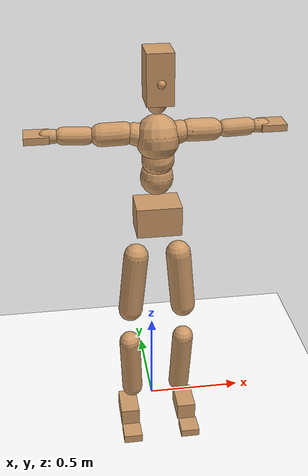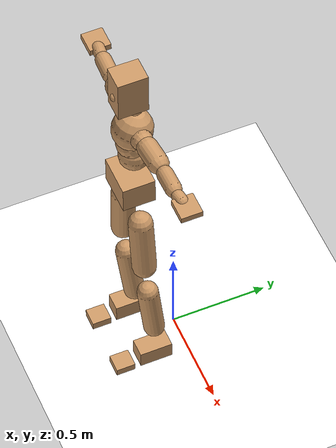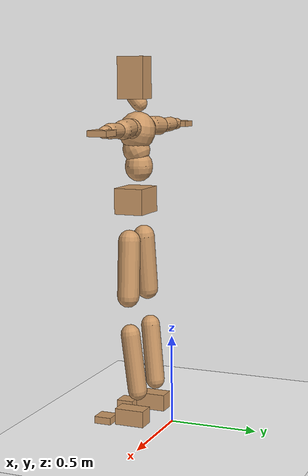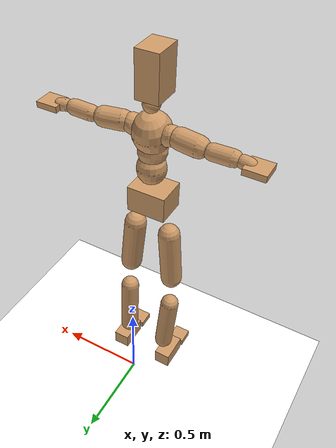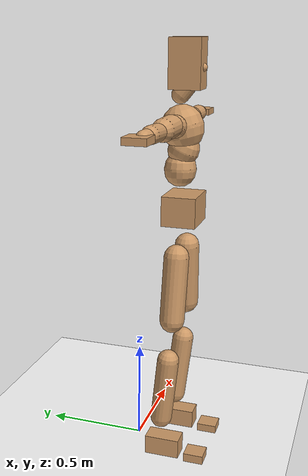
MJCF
<mujoco model="humanoid">
  <option integrator="implicitfast" />

  <visual>
    <global offwidth="1280" offheight="960" />
    <headlight active="1" ambient="0.34 0.34 0.34" diffuse="0.5 0.5 0.5" />
  </visual>

  <default>
    <joint damping="2" stiffness="2" armature="0.01" limited="true" solimplimit="0 .99 .01" />
    <geom condim="1" friction="0.7 0.005 0.0001" solimp=".99 .99 .003" solref="0.015 1" margin="0.001" rgba="0.8 0.6 .4 1" />
    <default class="smplcontact">
      <geom condim="3" friction="1. 0.005 0.0001" solref="0.015 1" solimp="0.98 0.98 0.001" priority="1" />
    </default>
    <default class="stiff_medium">
      <joint stiffness="10" />
    </default>
    <default class="stiff_medium_higher">
      <joint stiffness="50" />
    </default>
    <default class="stiff_high">
      <joint stiffness="100" />
    </default>
  </default>

  <asset>
    <texture type="skybox" builtin="gradient" rgb1="0.99 0.99 0.99" rgb2="0.608 0.828 0.892" width="100" />
    <texture builtin="flat" height="1278" mark="cross" markrgb="1 1 1" name="texgeom" random="0.01" rgb1="0.8 0.6 0.4" rgb2="0.8 0.6 0.4" type="cube" width="127" />
    <texture name="texplane" type="2d" builtin="checker" markrgb="1 1 1" rgb1="0.756 0.772 0.76" rgb2="0.6 0.6 0.6" width="100" height="100" />
    <material name="MatPlane" reflectance="0.5" texture="texplane" texrepeat="1 1" texuniform="true" />
    <material name="geom" texture="texgeom" texuniform="true" />
  </asset>

  <worldbody>
    <light name="tracking_light" pos="0 0 7" dir="0 0 -1" directional="true" cutoff="100" exponent="1" diffuse="1 1 1" specular="0.1 0.1 0.1" mode="trackcom" />
    <camera name="back" pos="0 3 2.4" xyaxes="-1 0 0 0 -1 2" mode="trackcom" />
    <camera name="side" pos="-3 0 2.4" xyaxes="0 -1 0 1 0 2" mode="trackcom" />
    <camera name="front_side" pos="-2.8 -2.8 0.8" xyaxes="0.5 -0.5 0 0.1 0.1 1" mode="trackcom" />
    <geom condim="3" name="floor" pos="0 0 0" rgba="1 1 1 1" size="100 100 .2" type="plane" material="MatPlane" />
    <body name="Pelvis" pos="-0.0018 -0.2233 1.27986" euler="90 0 0">
      <site name="Pelvis" size="0.01" />
      <freejoint name="Pelvis" />
      <geom type="box" pos="-0.0000 -0.0121 -0.0055" size="0.1069 0.0722 0.083" quat="1.0000 0.0000 0.0000 0.0000" density="3165.830099" name="Pelvis" />
      <body name="L_Hip" pos="0.0955625 -0.125675 -0.00935">
        <joint name="L_Hip_x" type="hinge" pos="0 0 0" axis="1 0 0" stiffness="17.19824030612245" range="-160.0 22.92" class="stiff_medium" damping="29.62936129092434" armature="0.022687051049198846"/>
        <joint name="L_Hip_y" type="hinge" pos="0 0 0" axis="0 1 0" stiffness="17.095561632653062" range="-70.0 70.0" class="stiff_medium" damping="16.759236135916314" armature="0.016429527259457143"/>
        <joint name="L_Hip_z" type="hinge" pos="0 0 0" axis="0 0 1" stiffness="17.10435142857143" range="-28.65 90.0" class="stiff_medium" damping="19.702841471961815" armature="0.02269609366308965"/>
        <geom type="capsule" density="2040.816327" fromto="0.0094875 -0.103125 -0.0012375 0.037675 -0.412775 -0.00495" size="0.0615" name="L_Hip" />
        <body name="L_Knee" pos="0.0471625 -0.5159 -0.0061875">
          <joint name="L_Knee_x" type="hinge" pos="0 0 0" axis="1 0 0" range="-5.16 171.89" damping="15.062760794576997" armature="0.021343797365827887" stiffness="3.321907163265306"/>
          <joint name="L_Knee_y" type="hinge" pos="0 0 0" axis="0 1 0" range="-4.58 6.88" damping="12.94596523287159" armature="0.01544157836446214" stiffness="3.3917763265306125"/>
          <joint name="L_Knee_z" type="hinge" pos="0 0 0" axis="0 0 1" range="-6.88 4.58" damping="15.006918060065534" armature="0.02138423024615951" stiffness="3.2910874489795923"/>
          <geom type="capsule" density="1234.567901" fromto="-0.0037125 -0.10945 -0.0119625 -0.0149875 -0.4378 -0.048125" size="0.0541" name="L_Knee" />
          <body name="L_Ankle" pos="-0.0187 -0.54725 -0.0600875">
            <joint name="L_Ankle_x" type="hinge" pos="0 0 0" axis="1 0 0" range="-45.84 45.84" class="stiff_medium" damping="8.859849432432462" armature="0.015857944517404216" stiffness="13.750018673469388"/>
            <joint name="L_Ankle_y" type="hinge" pos="0 0 0" axis="0 1 0" range="-74.48 22.92" class="stiff_medium" damping="4.399379468505369" armature="0.01564001862343353" stiffness="13.750011836734695"/>
            <joint name="L_Ankle_z" type="hinge" pos="0 0 0" axis="0 0 1" range="-4.58 4.58" class="stiff_medium" damping="8.387836414113867" armature="0.014213292870693854" stiffness="13.75"/>
            <geom type="box" pos="0.0320375 -0.0328625 0.033275" size="0.0483 0.0464 0.085" quat="1.0000 0.0000 0.0000 0.0000" density="449.071558" name="L_Ankle" class="smplcontact" />
            <body name="L_Toe" pos="0.0363 -0.076725 0.164038">
              <joint name="L_Toe_x" type="hinge" pos="0 0 0" axis="1 0 0" range="-91.67 22.92" armature="0.013386048586152794" damping="2.7133607799892805" stiffness="2.75"/>
              <joint name="L_Toe_y" type="hinge" pos="0 0 0" axis="0 1 0" range="-4.58 4.58" armature="0.012385744586589321" damping="2.610011402776648" stiffness="2.75"/>
              <joint name="L_Toe_z" type="hinge" pos="0 0 0" axis="0 0 1" range="-4.58 4.58" armature="0.010363183740584822" damping="2.387415141386527" stiffness="2.75"/>
              <geom type="box" pos="-0.004125 0.0075625 0.0341" size="0.0478 0.02 0.0496" quat="1.0000 0.0000 0.0000 0.0000" density="423.206892" name="L_Toe" class="smplcontact" />
            </body>
          </body>
        </body>
      </body>
      <body name="R_Hip" pos="-0.0930875 -0.124437 -0.0059125">
        <joint name="R_Hip_x" type="hinge" pos="0 0 0" axis="1 0 0" stiffness="17.19824030612245" range="-160.0 22.92" class="stiff_medium" damping="29.62936129092434" armature="0.022687051049198846"/>
        <joint name="R_Hip_y" type="hinge" pos="0 0 0" axis="0 1 0" stiffness="17.095561632653062" range="-70.0 70.0" class="stiff_medium" damping="16.759236135916314" armature="0.016429527259457143"/>
        <joint name="R_Hip_z" type="hinge" pos="0 0 0" axis="0 0 1" stiffness="17.10435142857143" range="-90.0 28.65" class="stiff_medium" damping="19.702841471961815" armature="0.02269609366308965"/>
        <geom type="capsule" density="2040.816327" fromto="-0.0105875 -0.105188 -0.002475 -0.042075 -0.420887 -0.0097625" size="0.0606" name="R_Hip" />
        <body name="R_Knee" pos="-0.0526625 -0.526075 -0.0122375">
          <joint name="R_Knee_x" type="hinge" pos="0 0 0" axis="1 0 0" range="-5.16 171.89" damping="15.062760794576997" armature="0.021343797365827887" stiffness="3.321907163265306"/>
          <joint name="R_Knee_y" type="hinge" pos="0 0 0" axis="0 1 0" range="-6.88 4.58" damping="12.94596523287159" armature="0.01544157836446214" stiffness="3.3917763265306125"/>
          <joint name="R_Knee_z" type="hinge" pos="0 0 0" axis="0 0 1" range="-4.58 6.88" damping="15.006918060065534" armature="0.02138423024615951" stiffness="3.2910874489795923"/>
          <geom type="capsule" density="1234.567901" fromto="0.0044 -0.109587 -0.0116875 0.017325 -0.438213 -0.046475" size="0.0541" name="R_Knee" />
          <body name="R_Ankle" pos="0.021725 -0.5478 -0.0581625">
            <joint name="R_Ankle_x" type="hinge" pos="0 0 0" axis="1 0 0" range="-45.84 45.84" class="stiff_medium" damping="8.859849432432462" armature="0.015857944517404216" stiffness="13.750018673469388"/>
            <joint name="R_Ankle_y" type="hinge" pos="0 0 0" axis="0 1 0" range="-22.92 74.48" class="stiff_medium" damping="4.399379468505369" armature="0.01564001862343353" stiffness="13.750011836734695"/>
            <joint name="R_Ankle_z" type="hinge" pos="0 0 0" axis="0 0 1" range="-4.58 4.58" class="stiff_medium" damping="8.387836414113867" armature="0.014213292870693854" stiffness="13.75"/>
            <geom type="box" pos="-0.02915 -0.023925 0.0352" size="0.0483 0.0478 0.0865" quat="1.0000 0.0000 0.0000 0.0000" density="434.700981" name="R_Ankle" class="smplcontact" />
            <body name="R_Toe" pos="-0.034925 -0.0661375 0.169538">
              <joint name="R_Toe_x" type="hinge" pos="0 0 0" axis="1 0 0" range="-91.67 22.92" armature="0.013386048586152794" damping="2.7133607799892805" stiffness="2.75"/>
              <joint name="R_Toe_y" type="hinge" pos="0 0 0" axis="0 1 0" range="-4.58 4.58" armature="0.012385744586589321" damping="2.610011402776648" stiffness="2.75"/>
              <joint name="R_Toe_z" type="hinge" pos="0 0 0" axis="0 0 1" range="-4.58 4.58" armature="0.010363183740584822" damping="2.387415141386527" stiffness="2.75"/>
              <geom type="box" pos="0.005775 0.0061875 0.0312125" size="0.0479 0.0216 0.0493" quat="1.0000 0.0000 0.0000 0.0000" density="407.384095" name="R_Toe" class="smplcontact" />
            </body>
          </body>
        </body>
      </body>
      <body name="Torso" pos="-0.0025 0.109 -0.0267">
        <joint name="Torso_x" type="hinge" pos="0 0 0" axis="1 0 0" range="-25.78 57.3" class="stiff_medium" damping="13.296564125699913" armature="0.008717287887859698" stiffness="9.01394612244898"/>
        <joint name="Torso_y" type="hinge" pos="0 0 0" axis="0 1 0" range="-57.3 57.3" class="stiff_high" damping="11.857975578739211" armature="0.0038447211811141586" stiffness="91.43158775510203"/>
        <joint name="Torso_z" type="hinge" pos="0 0 0" axis="0 0 1" range="-34.38 34.38" class="stiff_high" damping="16.19322021929785" armature="0.0070455832998023386" stiffness="93.0442413043478"/>
        <geom type="capsule" density="2040.816327" fromto="0.0025 0.0608 0.0005 0.003 0.0743 0.0006" size="0.0769" name="Torso" />
        <body name="Spine" pos="0.0055 0.1352 0.0011">
          <joint name="Spine_x" type="hinge" pos="0 0 0" axis="1 0 0" stiffness="8.855082083333333" range="-25.78 57.3" class="stiff_medium" damping="13.076797677453987" armature="0.008582774445870408"/>
          <joint name="Spine_y" type="hinge" pos="0 0 0" axis="0 1 0" stiffness="8.966550425531915" range="-57.3 57.3" class="stiff_high" damping="4.670538649446807" armature="0.003801268715520682"/>
          <joint name="Spine_z" type="hinge" pos="0 0 0" axis="0 0 1" stiffness="17.399179999999998" range="-34.38 34.38" class="stiff_high" damping="8.61238928809505" armature="0.005920876830729186"/>
          <geom type="capsule" density="2040.816327" fromto="0.0007 0.0238 0.0114 0.0008 0.0291 0.014" size="0.0755" name="Spine" />
          <body name="Chest" pos="0.0015 0.0529 0.0254">
            <joint name="Chest_x" type="hinge" pos="0 0 0" axis="1 0 0" stiffness="8.445605217391304" range="-25.78 57.3" class="stiff_medium" damping="12.725283601188009" armature="0.008521609816255424"/>
            <joint name="Chest_y" type="hinge" pos="0 0 0" axis="0 1 0" stiffness="7.416513142857141" range="-57.3 57.3" class="stiff_high" damping="4.235867490218072" armature="0.003780114777548564"/>
            <joint name="Chest_z" type="hinge" pos="0 0 0" axis="0 0 1" stiffness="17.461715111111108" range="-34.38 34.38" class="stiff_high" damping="8.265316118618486" armature="0.005433748608980235"/>
            <geom type="capsule" density="2040.816327" fromto="-0.0009 0.0682 -0.0173 -0.001 0.0833 -0.0212" size="0.1002" name="Chest" />
            <body name="Neck" pos="-0.0028 0.2139 -0.0429">
              <joint name="Neck_x" type="hinge" pos="0 0 0" axis="1 0 0" range="-28.65 57.3" class="stiff_medium_higher" damping="9.999999999999993" armature="0.009999999999999988" stiffness="50.0"/>
              <joint name="Neck_y" type="hinge" pos="0 0 0" axis="0 1 0" range="-40.11 40.11" class="stiff_medium_higher" damping="10.0" armature="0.01" stiffness="50.0"/>
              <joint name="Neck_z" type="hinge" pos="0 0 0" axis="0 0 1" range="-40.11 40.11" class="stiff_medium_higher" damping="9.999999999999986" armature="0.00999999999999997" stiffness="50.0"/>
              <geom type="capsule" density="1000" fromto="0.001 0.013 0.0103 0.0041 0.052 0.0411" size="0.0436" name="Neck" />
              <body name="Head" pos="0.0052 0.065 0.0513">
                <joint name="Head_x" type="hinge" pos="0 0 0" axis="1 0 0" range="-28.65 57.3" class="stiff_medium_higher" damping="2.0" armature="0.01" stiffness="50.0"/>
                <joint name="Head_y" type="hinge" pos="0 0 0" axis="0 1 0" range="-40.11 40.11" class="stiff_medium_higher" damping="2.0" armature="0.01" stiffness="50.0"/>
                <joint name="Head_z" type="hinge" pos="0 0 0" axis="0 0 1" range="-40.11 40.11" class="stiff_medium_higher" damping="1.9999999999999931" armature="0.009999999999999933" stiffness="50.0"/>
                <geom type="box" pos="-0.0042 0.0876 -0.0116" size="0.0606 0.1154 0.076" quat="1.0000 0.0000 0.0000 0.0000" density="1018.069894" name="Head" />
                <geom type="capsule" name="nose" size="0.02 0.01" pos="0 0.07 0.05" quat="1 0 0 0" mass="0" contype="0" conaffinity="0" />
              </body>
            </body>
            <body name="L_Thorax" pos="0.052205 0.0806262 -0.0225912">
              <joint name="L_Thorax_x" type="hinge" pos="0 0 0" axis="1 0 0" range="-10.89 4.58" class="stiff_medium_higher" damping="10.752161019344758" armature="0.005492534491244077" stiffness="26.310478061224497"/>
              <joint name="L_Thorax_y" type="hinge" pos="0 0 0" axis="0 1 0" range="-28.65 17.19" class="stiff_medium_higher" damping="8.656507675839677" armature="0.003599090918613799" stiffness="26.025712755102038"/>
              <joint name="L_Thorax_z" type="hinge" pos="0 0 0" axis="0 0 1" range="-31.51 40.11" class="stiff_medium_higher" damping="8.654936190408645" armature="0.0035973494554525556" stiffness="26.02885867346939"/>
              <geom type="capsule" density="1000" fromto="0.0120575 0.00404125 -0.0011925 0.04823 0.016165 -0.00470375" size="0.0521" name="L_Thorax" />
              <body name="L_Shoulder" pos="0.0602875 0.0202062 -0.00589625">
                <joint name="L_Shoulder_x" type="hinge" pos="0 0 0" axis="1 0 0" range="-97.4 97.4" class="stiff_medium" damping="3.435570611371519" armature="0.006181474178059021" stiffness="5.3039961224489796"/>
                <joint name="L_Shoulder_y" type="hinge" pos="0 0 0" axis="0 1 0" range="-108.86 80.21" class="stiff_medium" damping="2.619467278569037" armature="0.00364693025105719" stiffness="5.226319999999999"/>
                <joint name="L_Shoulder_z" type="hinge" pos="0 0 0" axis="0 0 1" range="-97.4 85.94" class="stiff_medium" damping="2.619734916927622" armature="0.003644479893049843" stiffness="5.230902653061225"/>
                <geom type="capsule" density="1000" fromto="0.0343837 -0.0017225 -0.00364375 0.137601 -0.0067575 -0.014575" size="0.0517" name="L_Shoulder" />
                <body name="L_Elbow" pos="0.171985 -0.00848 -0.0182187">
                  <joint name="L_Elbow_x" type="hinge" pos="0 0 0" axis="1 0 0" range="-17.19 4.58" damping="3.1785577743546862" armature="0.0073936623788687416" stiffness="1.0931772653061227"/>
                  <joint name="L_Elbow_y" type="hinge" pos="0 0 0" axis="0 1 0" range="-180.0 17.19" damping="2.303303060735329" armature="0.0038850422609153757" stiffness="1.0924370204081633"/>
                  <joint name="L_Elbow_z" type="hinge" pos="0 0 0" axis="0 0 1" range="-100.84 4.58" damping="2.300811432859374" armature="0.0038721783452337222" stiffness="1.0936961632653062"/>
                  <geom type="capsule" density="1000" fromto="0.0329925 0.0011925 -0.0001325 0.132102 0.00477 -0.00059625" size="0.0405" name="L_Elbow" />
                  <body name="L_Wrist" pos="0.165095 0.0059625 -0.000795">
                    <joint name="L_Wrist_x" type="hinge" pos="0 0 0" axis="1 0 0" range="-180.0 22.92" armature="0.00800142785574359" damping="1.4109622696560373" stiffness="1.2440370408163264"/>
                    <joint name="L_Wrist_y" type="hinge" pos="0 0 0" axis="0 1 0" range="-17.19 17.19" armature="0.0048794714290034645" damping="1.0965644446974514" stiffness="1.2321555714285712"/>
                    <joint name="L_Wrist_z" type="hinge" pos="0 0 0" axis="0 0 1" range="-22.92 22.92" armature="0.004698864868438955" damping="1.0781698402209015" stiffness="1.2369478979591837"/>
                    <geom type="capsule" density="1000" fromto="0.01113 -0.00106 -0.0019875 0.04452 -0.00430625 -0.00795" size="0.0318" name="L_Wrist" class="smplcontact" />
                    <body name="L_Hand" pos="0.05565 -0.0054325 -0.00987125">
                      <joint name="L_Hand_x" type="hinge" pos="0 0 0" axis="1 0 0" range="-17.19 17.19" armature="0.009755552996203867" damping="1.6078618449167752" stiffness="1.3249990612244895"/>
                      <joint name="L_Hand_y" type="hinge" pos="0 0 0" axis="0 1 0" range="-51.57 51.57" armature="0.007043747166286061" damping="1.3662326477640436" stiffness="1.3249990408163264"/>
                      <joint name="L_Hand_z" type="hinge" pos="0 0 0" axis="0 0 1" range="-91.67 91.67" armature="0.006320878329523043" damping="1.2942300773618036" stiffness="1.3249989999999998"/>
                      <geom type="box" pos="0.0326612 0.0006625 -0.0038425" size="0.0585 0.0158 0.0538" quat="1.0000 0.0000 0.0000 0.0000" density="400.552564" name="L_Hand" class="smplcontact" />
                    </body>
                  </body>
                </body>
              </body>
            </body>
            <body name="R_Thorax" pos="-0.0541925 0.078705 -0.0255725">
              <joint name="R_Thorax_x" type="hinge" pos="0 0 0" axis="1 0 0" range="-10.89 4.58" class="stiff_medium_higher" damping="10.752161019344758" armature="0.005492534491244077" stiffness="26.310478061224497"/>
              <joint name="R_Thorax_y" type="hinge" pos="0 0 0" axis="0 1 0" range="-17.19 28.65" class="stiff_medium_higher" damping="8.656507675839677" armature="0.003599090918613799" stiffness="26.025712755102038"/>
              <joint name="R_Thorax_z" type="hinge" pos="0 0 0" axis="0 0 1" range="-40.11 31.51" class="stiff_medium_higher" damping="8.654936190408645" armature="0.0035973494554525556" stiffness="26.02885867346939"/>
              <geom type="capsule" density="1000" fromto="-0.01272 0.00430625 -0.0011925 -0.05088 0.017225 -0.00483625" size="0.0511" name="R_Thorax" />
              <body name="R_Shoulder" pos="-0.0636 0.0215975 -0.00602875">
                <joint name="R_Shoulder_x" type="hinge" pos="0 0 0" axis="1 0 0" range="-97.4 97.4" class="stiff_medium" damping="3.435570611371519" armature="0.006181474178059021" stiffness="5.3039961224489796"/>
                <joint name="R_Shoulder_y" type="hinge" pos="0 0 0" axis="0 1 0" range="-80.21 108.86" class="stiff_medium" damping="2.619467278569037" armature="0.00364693025105719" stiffness="5.226319999999999"/>
                <joint name="R_Shoulder_z" type="hinge" pos="0 0 0" axis="0 0 1" range="-85.94 97.4" class="stiff_medium" damping="2.619734916927622" armature="0.003644479893049843" stiffness="5.230902653061225"/>
                <geom type="capsule" density="1000" fromto="-0.0335888 -0.00178875 -0.00284875 -0.134488 -0.00708875 -0.0113288" size="0.0531" name="R_Shoulder" />
                <body name="R_Elbow" pos="-0.168076 -0.00881125 -0.0141775">
                  <joint name="R_Elbow_x" type="hinge" pos="0 0 0" axis="1 0 0" range="-17.19 4.58" damping="3.1785577743546862" armature="0.0073936623788687416" stiffness="1.0931772653061227"/>
                  <joint name="R_Elbow_y" type="hinge" pos="0 0 0" axis="0 1 0" range="-17.19 180.0" damping="2.303303060735329" armature="0.0038850422609153757" stiffness="1.0924370204081633"/>
                  <joint name="R_Elbow_z" type="hinge" pos="0 0 0" axis="0 0 1" range="-4.58 100.84" damping="2.300811432859374" armature="0.0038721783452337222" stiffness="1.0936961632653062"/>
                  <geom type="capsule" density="1000" fromto="-0.0338538 0.00106 -0.00072875 -0.135282 0.0041075 -0.002915" size="0.0408" name="R_Elbow" />
                  <body name="R_Wrist" pos="-0.169136 0.0051675 -0.00371">
                    <joint name="R_Wrist_x" type="hinge" pos="0 0 0" axis="1 0 0" range="-180.0 22.92" armature="0.00800142785574359" damping="1.4109622696560373" stiffness="1.2440370408163264"/>
                    <joint name="R_Wrist_y" type="hinge" pos="0 0 0" axis="0 1 0" range="-17.19 17.19" armature="0.0048794714290034645" damping="1.0965644446974514" stiffness="1.2321555714285712"/>
                    <joint name="R_Wrist_z" type="hinge" pos="0 0 0" axis="0 0 1" range="-22.92 22.92" armature="0.004698864868438955" damping="1.0781698402209015" stiffness="1.2369478979591837"/>
                    <geom type="capsule" density="1000" fromto="-0.0111962 -0.000795 -0.00139125 -0.0448512 -0.00324625 -0.00549875" size="0.0326" name="R_Wrist" class="smplcontact" />
                    <body name="R_Hand" pos="-0.0560475 -0.00404125 -0.00682375">
                      <joint name="R_Hand_x" type="hinge" pos="0 0 0" axis="1 0 0" range="-17.19 17.19" armature="0.009755552996203867" damping="1.6078618449167752" stiffness="1.3249990612244895"/>
                      <joint name="R_Hand_y" type="hinge" pos="0 0 0" axis="0 1 0" range="-51.57 51.57" armature="0.007043747166286061" damping="1.3662326477640436" stiffness="1.3249990408163264"/>
                      <joint name="R_Hand_z" type="hinge" pos="0 0 0" axis="0 0 1" range="-91.67 91.67" armature="0.006320878329523043" damping="1.2942300773618036" stiffness="1.3249989999999998"/>
                      <geom type="box" pos="-0.0306075 -0.00059625 -0.00523375" size="0.0569 0.0164 0.0546" quat="1.0000 0.0000 0.0000 0.0000" density="403.679611" name="R_Hand" class="smplcontact" />
                    </body>
                  </body>
                </body>
              </body>
            </body>
          </body>
        </body>
      </body>
    </body>
  </worldbody>
  <actuator>
    <general name="L_Hip_x" joint="L_Hip_x" biastype="affine" gainprm="494.15714895193184" biasprm="-370.3206974542467 -309.5683255102041 -3.9505815054565785" ctrllimited="true" ctrlrange="-1 1" forcerange="-619.1366510204082 619.1366510204082" />
    <general name="L_Hip_y" joint="L_Hip_y" biastype="affine" gainprm="375.9510358389407" biasprm="0.0 -307.72010938775514 -3.3518472271832627" ctrllimited="true" ctrlrange="-1 1" forcerange="-615.4402187755103 615.4402187755103" />
    <general name="L_Hip_z" joint="L_Hip_z" biastype="affine" gainprm="318.78232268102033" biasprm="164.83182045074247 -307.8783257142857 -3.940568294392363" ctrllimited="true" ctrlrange="-1 1" forcerange="-615.7566514285714 615.7566514285714" />
    <general name="L_Knee_x" joint="L_Knee_x" biastype="affine" gainprm="461.92695293520586" biasprm="435.00186875395013 -298.9716446938775 -3.7656901986442493" ctrllimited="true" ctrlrange="-1 1" forcerange="-597.943289387755 597.943289387755" />
    <general name="L_Knee_y" joint="L_Knee_y" biastype="affine" gainprm="30.528235525488515" biasprm="6.1269582642778 -305.25986938775515 -3.2364913082178974" ctrllimited="true" ctrlrange="-1 1" forcerange="-610.5197387755103 610.5197387755103" />
    <general name="L_Knee_z" joint="L_Knee_z" biastype="affine" gainprm="29.621968875582738" biasprm="-5.945072287420619 -296.1978704081633 -3.7517295150163834" ctrllimited="true" ctrlrange="-1 1" forcerange="-592.3957408163266 592.3957408163266" />
    <general name="L_Ankle_x" joint="L_Ankle_x" biastype="affine" gainprm="99.00742693676564" biasprm="0.0 -123.7501680612245 -2.953283144144154" ctrllimited="true" ctrlrange="-1 1" forcerange="-247.500336122449 247.500336122449" />
    <general name="L_Ankle_y" joint="L_Ankle_y" biastype="affine" gainprm="105.18453958139726" biasprm="-55.680850727072304 -123.75010653061226 -2.932919645670246" ctrllimited="true" ctrlrange="-1 1" forcerange="-247.5002130612245 247.5002130612245" />
    <general name="L_Ankle_z" joint="L_Ankle_z" biastype="affine" gainprm="9.89208986799086" biasprm="0.0 -123.75 -2.7959454713712892" ctrllimited="true" ctrlrange="-1 1" forcerange="-247.5 247.5" />
    <general name="L_Toe_x" joint="L_Toe_x" biastype="affine" gainprm="98.99865309808496" biasprm="-59.39573610693202 -99.0 -1.0853443119957122" ctrllimited="true" ctrlrange="-1 1" forcerange="-198.0 198.0" />
    <general name="L_Toe_y" joint="L_Toe_y" biastype="affine" gainprm="7.913671894392689" biasprm="0.0 -99.0 -1.0440045611106592" ctrllimited="true" ctrlrange="-1 1" forcerange="-198.0 198.0" />
    <general name="L_Toe_z" joint="L_Toe_z" biastype="affine" gainprm="7.913671894392689" biasprm="0.0 -99.0 -0.954966056554611" ctrllimited="true" ctrlrange="-1 1" forcerange="-198.0 198.0" />
    <general name="R_Hip_x" joint="R_Hip_x" biastype="affine" gainprm="494.15714895193184" biasprm="-370.3206974542467 -309.5683255102041 -3.9505815054565785" ctrllimited="true" ctrlrange="-1 1" forcerange="-619.1366510204082 619.1366510204082" />
    <general name="R_Hip_y" joint="R_Hip_y" biastype="affine" gainprm="375.9510358389407" biasprm="0.0 -307.72010938775514 -3.3518472271832627" ctrllimited="true" ctrlrange="-1 1" forcerange="-615.4402187755103 615.4402187755103" />
    <general name="R_Hip_z" joint="R_Hip_z" biastype="affine" gainprm="318.78232268102033" biasprm="-164.83182045074247 -307.8783257142857 -3.940568294392363" ctrllimited="true" ctrlrange="-1 1" forcerange="-615.7566514285714 615.7566514285714" />
    <general name="R_Knee_x" joint="R_Knee_x" biastype="affine" gainprm="461.92695293520586" biasprm="435.00186875395013 -298.9716446938775 -3.7656901986442493" ctrllimited="true" ctrlrange="-1 1" forcerange="-597.943289387755 597.943289387755" />
    <general name="R_Knee_y" joint="R_Knee_y" biastype="affine" gainprm="30.528235525488515" biasprm="-6.1269582642778 -305.25986938775515 -3.2364913082178974" ctrllimited="true" ctrlrange="-1 1" forcerange="-610.5197387755103 610.5197387755103" />
    <general name="R_Knee_z" joint="R_Knee_z" biastype="affine" gainprm="29.621968875582738" biasprm="5.945072287420619 -296.1978704081633 -3.7517295150163834" ctrllimited="true" ctrlrange="-1 1" forcerange="-592.3957408163266 592.3957408163266" />
    <general name="R_Ankle_x" joint="R_Ankle_x" biastype="affine" gainprm="99.00742693676564" biasprm="0.0 -123.7501680612245 -2.953283144144154" ctrllimited="true" ctrlrange="-1 1" forcerange="-247.500336122449 247.500336122449" />
    <general name="R_Ankle_y" joint="R_Ankle_y" biastype="affine" gainprm="105.18453958139726" biasprm="55.680850727072304 -123.75010653061226 -2.932919645670246" ctrllimited="true" ctrlrange="-1 1" forcerange="-247.5002130612245 247.5002130612245" />
    <general name="R_Ankle_z" joint="R_Ankle_z" biastype="affine" gainprm="9.89208986799086" biasprm="0.0 -123.75 -2.7959454713712892" ctrllimited="true" ctrlrange="-1 1" forcerange="-247.5 247.5" />
    <general name="R_Toe_x" joint="R_Toe_x" biastype="affine" gainprm="98.99865309808496" biasprm="-59.39573610693202 -99.0 -1.0853443119957122" ctrllimited="true" ctrlrange="-1 1" forcerange="-198.0 198.0" />
    <general name="R_Toe_y" joint="R_Toe_y" biastype="affine" gainprm="7.913671894392689" biasprm="0.0 -99.0 -1.0440045611106592" ctrllimited="true" ctrlrange="-1 1" forcerange="-198.0 198.0" />
    <general name="R_Toe_z" joint="R_Toe_z" biastype="affine" gainprm="7.913671894392689" biasprm="0.0 -99.0 -0.954966056554611" ctrllimited="true" ctrlrange="-1 1" forcerange="-198.0 198.0" />
    <general name="Torso_x" joint="Torso_x" biastype="affine" gainprm="156.84477639727098" biasprm="59.505866057318 -216.33470693877553 -3.5457504335199768" ctrllimited="true" ctrlrange="-1 1" forcerange="-324.5020604081633 324.5020604081633" />
    <general name="Torso_y" joint="Torso_y" biastype="affine" gainprm="219.45197455967397" biasprm="0.0 -219.43581061224486 -2.371595115747842" ctrllimited="true" ctrlrange="-1 1" forcerange="-329.1537159183673 329.1537159183673" />
    <general name="Torso_z" joint="Torso_z" biastype="affine" gainprm="133.99357690475964" biasprm="0.0 -223.30617913043474 -3.23864404385957" ctrllimited="true" ctrlrange="-1 1" forcerange="-334.9592686956521 334.9592686956521" />
    <general name="Spine_x" joint="Spine_x" biastype="affine" gainprm="154.08050486134445" biasprm="58.457119802955894 -212.52197 -3.487146047321063" ctrllimited="true" ctrlrange="-1 1" forcerange="-318.782955 318.782955" />
    <general name="Spine_y" joint="Spine_y" biastype="affine" gainprm="215.21306193898633" biasprm="0.0 -215.19721021276595 -2.3352693247234035" ctrllimited="true" ctrlrange="-1 1" forcerange="-322.7958153191489 322.7958153191489" />
    <general name="Spine_z" joint="Spine_z" biastype="affine" gainprm="125.28332386438697" biasprm="0.0 -208.79016 -2.8707964293650168" ctrllimited="true" ctrlrange="-1 1" forcerange="-313.18523999999996 313.18523999999996" />
    <general name="Chest_x" joint="Chest_x" biastype="affine" gainprm="146.95551136725376" biasprm="55.753944611168 -202.69452521739132 -3.3934089603168025" ctrllimited="true" ctrlrange="-1 1" forcerange="-304.04178782608693 304.04178782608693" />
    <general name="Chest_y" joint="Chest_y" biastype="affine" gainprm="178.00942688507038" biasprm="0.0 -177.9963154285714 -2.117933745109036" ctrllimited="true" ctrlrange="-1 1" forcerange="-266.9944731428571 266.9944731428571" />
    <general name="Chest_z" joint="Chest_z" biastype="affine" gainprm="125.7336098306353" biasprm="0.0 -209.5405813333333 -2.755105372872829" ctrllimited="true" ctrlrange="-1 1" forcerange="-314.31087199999996 314.31087199999996" />
    <general name="Neck_x" joint="Neck_x" biastype="affine" gainprm="27.00198885760427" biasprm="9.000662952534757 -36.0 -0.7999999999999995" ctrllimited="true" ctrlrange="-1 1" forcerange="-72.0 72.0" />
    <general name="Neck_y" joint="Neck_y" biastype="affine" gainprm="25.20185626709732" biasprm="0.0 -36.0 -0.8" ctrllimited="true" ctrlrange="-1 1" forcerange="-72.0 72.0" />
    <general name="Neck_z" joint="Neck_z" biastype="affine" gainprm="25.20185626709732" biasprm="0.0 -36.0 -0.7999999999999989" ctrllimited="true" ctrlrange="-1 1" forcerange="-72.0 72.0" />
    <general name="Head_x" joint="Head_x" biastype="affine" gainprm="18.001325905069514" biasprm="6.000441968356505 -24.0 -0.8" ctrllimited="true" ctrlrange="-1 1" forcerange="-48.0 48.0" />
    <general name="Head_y" joint="Head_y" biastype="affine" gainprm="16.801237511398213" biasprm="0.0 -24.0 -0.8" ctrllimited="true" ctrlrange="-1 1" forcerange="-48.0 48.0" />
    <general name="Head_z" joint="Head_z" biastype="affine" gainprm="16.801237511398213" biasprm="0.0 -24.0 -0.7999999999999973" ctrllimited="true" ctrlrange="-1 1" forcerange="-48.0 48.0" />
    <general name="L_Thorax_x" joint="L_Thorax_x" biastype="affine" gainprm="8.524671780005175" biasprm="-3.4770962464015946 -63.14514734693879 -0.8601728815475806" ctrllimited="true" ctrlrange="-1 1" forcerange="-126.29029469387758 126.29029469387758" />
    <general name="L_Thorax_y" joint="L_Thorax_y" biastype="affine" gainprm="24.98652465153687" biasprm="-6.246631162884218 -62.461710612244886 -0.6925206140671741" ctrllimited="true" ctrlrange="-1 1" forcerange="-124.92342122448977 124.92342122448977" />
    <general name="L_Thorax_z" joint="L_Thorax_z" biastype="affine" gainprm="39.04343825747016" biasprm="4.688265414887508 -62.46926081632654 -0.6923948952326917" ctrllimited="true" ctrlrange="-1 1" forcerange="-124.93852163265308 124.93852163265308" />
    <general name="L_Shoulder_x" joint="L_Shoulder_x" biastype="affine" gainprm="43.279353003673734" biasprm="0.0 -25.459181387755102 -0.9161521630324052" ctrllimited="true" ctrlrange="-1 1" forcerange="-50.918362775510204 50.918362775510204" />
    <general name="L_Shoulder_y" joint="L_Shoulder_y" biastype="affine" gainprm="41.39112503423586" biasprm="-6.272045973612193 -25.086336 -0.6985246076184098" ctrllimited="true" ctrlrange="-1 1" forcerange="-50.172672 50.172672" />
    <general name="L_Shoulder_z" joint="L_Shoulder_z" biastype="affine" gainprm="40.171909368365355" biasprm="-2.511018224945282 -25.108332734693878 -0.6985959778473659" ctrllimited="true" ctrlrange="-1 1" forcerange="-50.216665469387756 50.216665469387756" />
    <general name="L_Elbow_x" joint="L_Elbow_x" biastype="affine" gainprm="7.476509558353197" biasprm="-4.330674576519699 -39.35438155102042 -0.5085692438967498" ctrllimited="true" ctrlrange="-1 1" forcerange="-78.70876310204083 78.70876310204083" />
    <general name="L_Elbow_y" joint="L_Elbow_y" biastype="affine" gainprm="67.67545257136767" biasprm="-55.87626367028943 -39.327732734693875 -0.3685284897176526" ctrllimited="true" ctrlrange="-1 1" forcerange="-78.65546546938775 78.65546546938775" />
    <general name="L_Elbow_z" joint="L_Elbow_z" biastype="affine" gainprm="36.22176204255759" biasprm="-33.07443382865295 -39.373061877551024 -0.3681298292574999" ctrllimited="true" ctrlrange="-1 1" forcerange="-78.74612375510205 78.74612375510205" />
    <general name="L_Wrist_x" joint="L_Wrist_x" biastype="affine" gainprm="13.217727298647333" biasprm="-10.231818470685607 -7.464222244897958 -0.5643849078624149" ctrllimited="true" ctrlrange="-1 1" forcerange="-14.928444489795917 14.928444489795917" />
    <general name="L_Wrist_y" joint="L_Wrist_y" biastype="affine" gainprm="2.2180434007032876" biasprm="0.0 -7.392933428571427 -0.4386257778789806" ctrllimited="true" ctrlrange="-1 1" forcerange="-14.785866857142855 14.785866857142855" />
    <general name="L_Wrist_z" joint="L_Wrist_z" biastype="affine" gainprm="2.9688936318338586" biasprm="0.0 -7.421687387755102 -0.4312679360883606" ctrllimited="true" ctrlrange="-1 1" forcerange="-14.843374775510204 14.843374775510204" />
    <general name="L_Hand_x" joint="L_Hand_x" biastype="affine" gainprm="2.38517399250132" biasprm="0.0 -7.949994367346937 -0.6431447379667101" ctrllimited="true" ctrlrange="-1 1" forcerange="-15.899988734693874 15.899988734693874" />
    <general name="L_Hand_y" joint="L_Hand_y" biastype="affine" gainprm="7.155521867291758" biasprm="0.0 -7.949994244897958 -0.5464930591056175" ctrllimited="true" ctrlrange="-1 1" forcerange="-15.899988489795916 15.899988489795916" />
    <general name="L_Hand_z" joint="L_Hand_z" biastype="affine" gainprm="12.7195398365005" biasprm="0.0 -7.9499939999999985 -0.5176920309447215" ctrllimited="true" ctrlrange="-1 1" forcerange="-15.899987999999997 15.899987999999997" />
    <general name="R_Thorax_x" joint="R_Thorax_x" biastype="affine" gainprm="8.524671780005175" biasprm="-3.4770962464015946 -63.14514734693879 -0.8601728815475806" ctrllimited="true" ctrlrange="-1 1" forcerange="-126.29029469387758 126.29029469387758" />
    <general name="R_Thorax_y" joint="R_Thorax_y" biastype="affine" gainprm="24.98652465153687" biasprm="6.246631162884214 -62.461710612244886 -0.6925206140671741" ctrllimited="true" ctrlrange="-1 1" forcerange="-124.92342122448977 124.92342122448977" />
    <general name="R_Thorax_z" joint="R_Thorax_z" biastype="affine" gainprm="39.04343825747016" biasprm="-4.688265414887508 -62.46926081632654 -0.6923948952326917" ctrllimited="true" ctrlrange="-1 1" forcerange="-124.93852163265308 124.93852163265308" />
    <general name="R_Shoulder_x" joint="R_Shoulder_x" biastype="affine" gainprm="43.279353003673734" biasprm="0.0 -25.459181387755102 -0.9161521630324052" ctrllimited="true" ctrlrange="-1 1" forcerange="-50.918362775510204 50.918362775510204" />
    <general name="R_Shoulder_y" joint="R_Shoulder_y" biastype="affine" gainprm="41.39112503423586" biasprm="6.272045973612193 -25.086336 -0.6985246076184098" ctrllimited="true" ctrlrange="-1 1" forcerange="-50.172672 50.172672" />
    <general name="R_Shoulder_z" joint="R_Shoulder_z" biastype="affine" gainprm="40.171909368365355" biasprm="2.5110182249452766 -25.108332734693878 -0.6985959778473659" ctrllimited="true" ctrlrange="-1 1" forcerange="-50.216665469387756 50.216665469387756" />
    <general name="R_Elbow_x" joint="R_Elbow_x" biastype="affine" gainprm="7.476509558353197" biasprm="-4.330674576519699 -39.35438155102042 -0.5085692438967498" ctrllimited="true" ctrlrange="-1 1" forcerange="-78.70876310204083 78.70876310204083" />
    <general name="R_Elbow_y" joint="R_Elbow_y" biastype="affine" gainprm="67.67545257136767" biasprm="55.87626367028943 -39.327732734693875 -0.3685284897176526" ctrllimited="true" ctrlrange="-1 1" forcerange="-78.65546546938775 78.65546546938775" />
    <general name="R_Elbow_z" joint="R_Elbow_z" biastype="affine" gainprm="36.22176204255759" biasprm="33.07443382865295 -39.373061877551024 -0.3681298292574999" ctrllimited="true" ctrlrange="-1 1" forcerange="-78.74612375510205 78.74612375510205" />
    <general name="R_Wrist_x" joint="R_Wrist_x" biastype="affine" gainprm="13.217727298647333" biasprm="-10.231818470685607 -7.464222244897958 -0.5643849078624149" ctrllimited="true" ctrlrange="-1 1" forcerange="-14.928444489795917 14.928444489795917" />
    <general name="R_Wrist_y" joint="R_Wrist_y" biastype="affine" gainprm="2.2180434007032876" biasprm="0.0 -7.392933428571427 -0.4386257778789806" ctrllimited="true" ctrlrange="-1 1" forcerange="-14.785866857142855 14.785866857142855" />
    <general name="R_Wrist_z" joint="R_Wrist_z" biastype="affine" gainprm="2.9688936318338586" biasprm="0.0 -7.421687387755102 -0.4312679360883606" ctrllimited="true" ctrlrange="-1 1" forcerange="-14.843374775510204 14.843374775510204" />
    <general name="R_Hand_x" joint="R_Hand_x" biastype="affine" gainprm="2.38517399250132" biasprm="0.0 -7.949994367346937 -0.6431447379667101" ctrllimited="true" ctrlrange="-1 1" forcerange="-15.899988734693874 15.899988734693874" />
    <general name="R_Hand_y" joint="R_Hand_y" biastype="affine" gainprm="7.155521867291758" biasprm="0.0 -7.949994244897958 -0.5464930591056175" ctrllimited="true" ctrlrange="-1 1" forcerange="-15.899988489795916 15.899988489795916" />
    <general name="R_Hand_z" joint="R_Hand_z" biastype="affine" gainprm="12.7195398365005" biasprm="0.0 -7.9499939999999985 -0.5176920309447215" ctrllimited="true" ctrlrange="-1 1" forcerange="-15.899987999999997 15.899987999999997" />
  </actuator>
  <contact>
    <exclude body1="Torso" body2="Chest" />
    <exclude body1="Head" body2="Chest" />
    <exclude body1="R_Knee" body2="R_Toe" />
    <exclude body1="R_Knee" body2="L_Ankle" />
    <exclude body1="R_Knee" body2="L_Toe" />
    <exclude body1="L_Knee" body2="L_Toe" />
    <exclude body1="L_Knee" body2="R_Ankle" />
    <exclude body1="L_Knee" body2="R_Toe" />
    <exclude body1="L_Shoulder" body2="Chest" />
    <exclude body1="R_Shoulder" body2="Chest" />
  </contact>
  <sensor>
    <framelinvel name="sensor_Pelvis_framelinvel" objtype="xbody" objname="Pelvis" />
    <framelinvel name="sensor_L_Hip_framelinvel" objtype="xbody" objname="L_Hip" />
    <framelinvel name="sensor_L_Knee_framelinvel" objtype="xbody" objname="L_Knee" />
    <framelinvel name="sensor_L_Ankle_framelinvel" objtype="xbody" objname="L_Ankle" />
    <framelinvel name="sensor_L_Toe_framelinvel" objtype="xbody" objname="L_Toe" />
    <framelinvel name="sensor_R_Hip_framelinvel" objtype="xbody" objname="R_Hip" />
    <framelinvel name="sensor_R_Knee_framelinvel" objtype="xbody" objname="R_Knee" />
    <framelinvel name="sensor_R_Ankle_framelinvel" objtype="xbody" objname="R_Ankle" />
    <framelinvel name="sensor_R_Toe_framelinvel" objtype="xbody" objname="R_Toe" />
    <framelinvel name="sensor_Torso_framelinvel" objtype="xbody" objname="Torso" />
    <framelinvel name="sensor_Spine_framelinvel" objtype="xbody" objname="Spine" />
    <framelinvel name="sensor_Chest_framelinvel" objtype="xbody" objname="Chest" />
    <framelinvel name="sensor_Neck_framelinvel" objtype="xbody" objname="Neck" />
    <framelinvel name="sensor_Head_framelinvel" objtype="xbody" objname="Head" />
    <framelinvel name="sensor_L_Thorax_framelinvel" objtype="xbody" objname="L_Thorax" />
    <framelinvel name="sensor_L_Shoulder_framelinvel" objtype="xbody" objname="L_Shoulder" />
    <framelinvel name="sensor_L_Elbow_framelinvel" objtype="xbody" objname="L_Elbow" />
    <framelinvel name="sensor_L_Wrist_framelinvel" objtype="xbody" objname="L_Wrist" />
    <framelinvel name="sensor_L_Hand_framelinvel" objtype="xbody" objname="L_Hand" />
    <framelinvel name="sensor_R_Thorax_framelinvel" objtype="xbody" objname="R_Thorax" />
    <framelinvel name="sensor_R_Shoulder_framelinvel" objtype="xbody" objname="R_Shoulder" />
    <framelinvel name="sensor_R_Elbow_framelinvel" objtype="xbody" objname="R_Elbow" />
    <framelinvel name="sensor_R_Wrist_framelinvel" objtype="xbody" objname="R_Wrist" />
    <framelinvel name="sensor_R_Hand_framelinvel" objtype="xbody" objname="R_Hand" />
    <frameangvel name="sensor_Pelvis_frameangvel" objtype="xbody" objname="Pelvis" />
    <frameangvel name="sensor_L_Hip_frameangvel" objtype="xbody" objname="L_Hip" />
    <frameangvel name="sensor_L_Knee_frameangvel" objtype="xbody" objname="L_Knee" />
    <frameangvel name="sensor_L_Ankle_frameangvel" objtype="xbody" objname="L_Ankle" />
    <frameangvel name="sensor_L_Toe_frameangvel" objtype="xbody" objname="L_Toe" />
    <frameangvel name="sensor_R_Hip_frameangvel" objtype="xbody" objname="R_Hip" />
    <frameangvel name="sensor_R_Knee_frameangvel" objtype="xbody" objname="R_Knee" />
    <frameangvel name="sensor_R_Ankle_frameangvel" objtype="xbody" objname="R_Ankle" />
    <frameangvel name="sensor_R_Toe_frameangvel" objtype="xbody" objname="R_Toe" />
    <frameangvel name="sensor_Torso_frameangvel" objtype="xbody" objname="Torso" />
    <frameangvel name="sensor_Spine_frameangvel" objtype="xbody" objname="Spine" />
    <frameangvel name="sensor_Chest_frameangvel" objtype="xbody" objname="Chest" />
    <frameangvel name="sensor_Neck_frameangvel" objtype="xbody" objname="Neck" />
    <frameangvel name="sensor_Head_frameangvel" objtype="xbody" objname="Head" />
    <frameangvel name="sensor_L_Thorax_frameangvel" objtype="xbody" objname="L_Thorax" />
    <frameangvel name="sensor_L_Shoulder_frameangvel" objtype="xbody" objname="L_Shoulder" />
    <frameangvel name="sensor_L_Elbow_frameangvel" objtype="xbody" objname="L_Elbow" />
    <frameangvel name="sensor_L_Wrist_frameangvel" objtype="xbody" objname="L_Wrist" />
    <frameangvel name="sensor_L_Hand_frameangvel" objtype="xbody" objname="L_Hand" />
    <frameangvel name="sensor_R_Thorax_frameangvel" objtype="xbody" objname="R_Thorax" />
    <frameangvel name="sensor_R_Shoulder_frameangvel" objtype="xbody" objname="R_Shoulder" />
    <frameangvel name="sensor_R_Elbow_frameangvel" objtype="xbody" objname="R_Elbow" />
    <frameangvel name="sensor_R_Wrist_frameangvel" objtype="xbody" objname="R_Wrist" />
    <frameangvel name="sensor_R_Hand_frameangvel" objtype="xbody" objname="R_Hand" />
    <subtreelinvel name="Chest_subtreelinvel" body="Chest" />
    <gyro name="Pelvis_gyro" site="Pelvis" />
  </sensor>
</mujoco>
